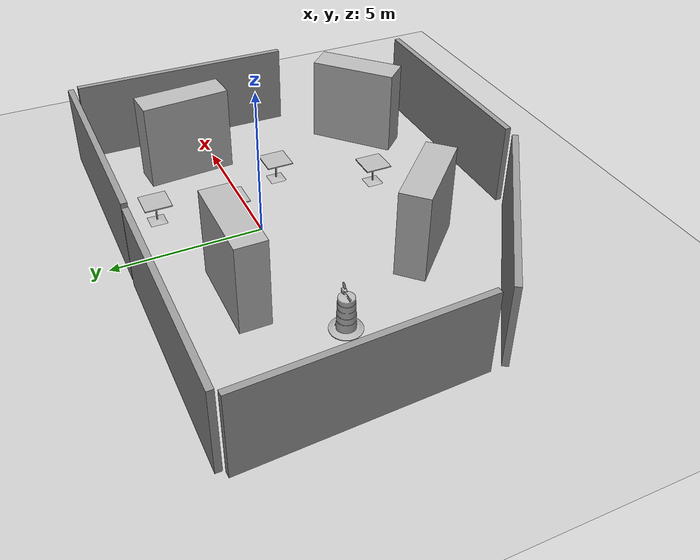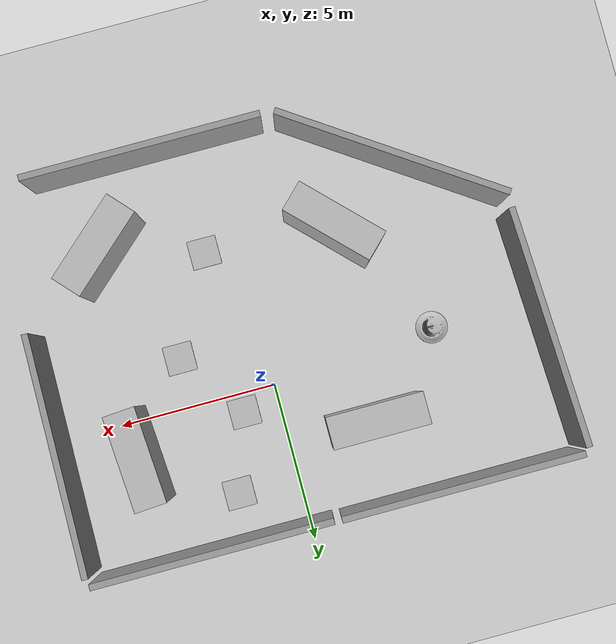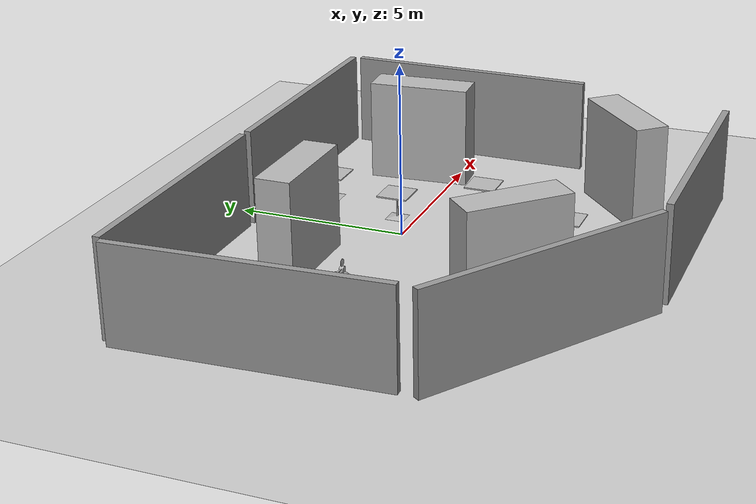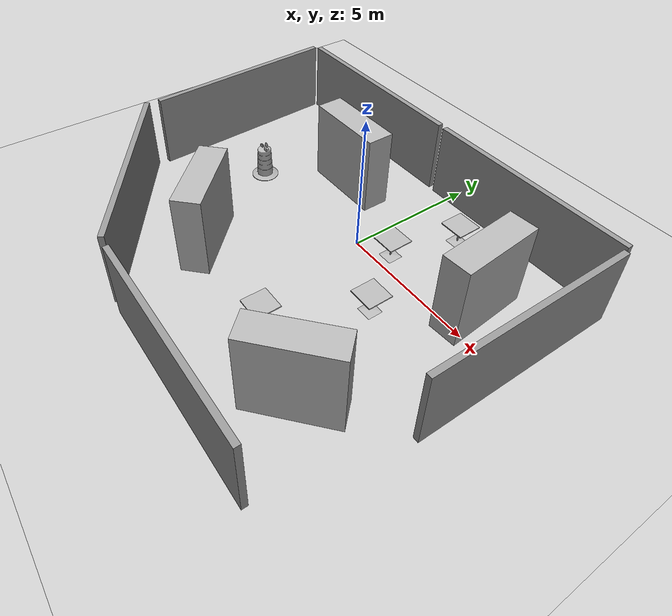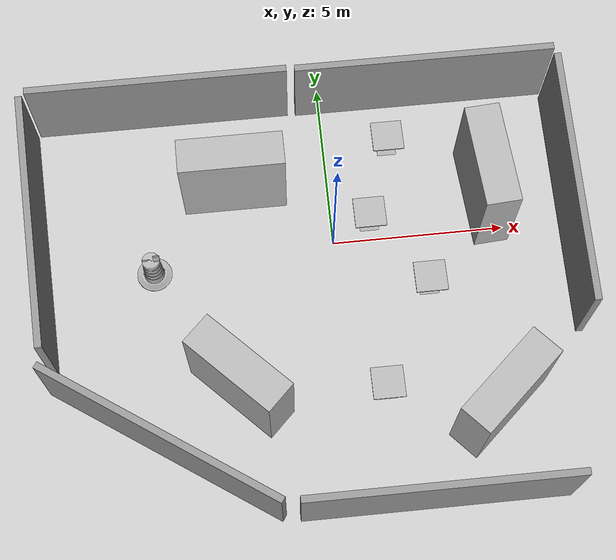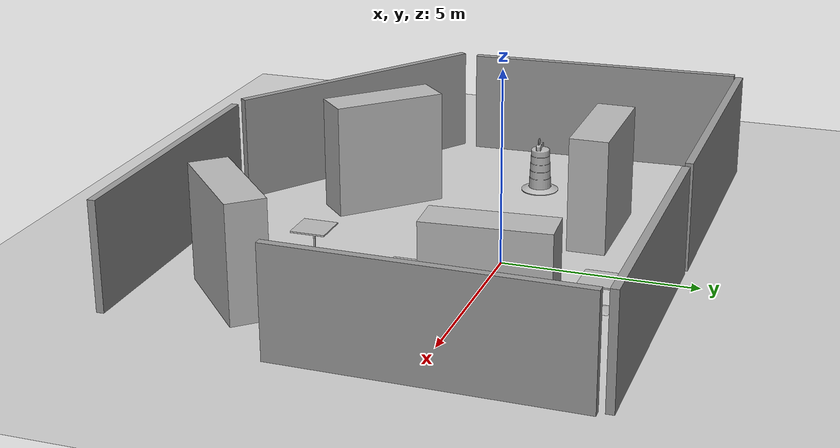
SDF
<sdf version="1.7">
 <world name="default">
  <model name="ground_plane">
   <static>1</static>
   <link name="link">
    <collision name="collision">
     <geometry><plane><normal>0 0 1</normal><size>100 100</size></plane></geometry>
     <surface><friction><ode><mu>100</mu><mu2>50</mu2></ode></friction></surface>
    </collision>
    <visual name="visual">
     <cast_shadows>0</cast_shadows>
     <geometry><plane><normal>0 0 1</normal><size>100 100</size></plane></geometry>
     <material>
      <script><uri>file://media/materials/scripts/gazebo.material</uri><name>Gazebo/Grey</name></script>
     </material>
    </visual>
   </link>
  </model>
  <light name="sun" type="directional">
   <pose>0 0 10 0 -0 0</pose>
   <diffuse>0.8 0.8 0.8 1</diffuse>
   <specular>0.2 0.2 0.2 1</specular>
   <attenuation>
    <range>1000</range>
    <constant>0.9</constant>
    <linear>0.01</linear>
    <quadratic>0.001</quadratic>
   </attenuation>
   <direction>-0.5 0.1 -0.9</direction>
   <spot><inner_angle>0</inner_angle><outer_angle>0</outer_angle><falloff>0</falloff></spot>
  </light>
  <scene><shadows>0</shadows><ambient>0.4 0.4 0.4 1</ambient><background>0.7 0.7 0.7 1</background></scene>
  <physics type="ode">
   <real_time_update_rate>1000</real_time_update_rate>
   <max_step_size>0.001</max_step_size>
   <real_time_factor>1</real_time_factor>
   <ode>
    <solver>
     <type>quick</type>
     <iters>150</iters>
     <precon_iters>0</precon_iters>
     <sor>1.4</sor>
     <use_dynamic_moi_rescaling>1</use_dynamic_moi_rescaling>
    </solver>
    <constraints>
     <cfm>1e-05</cfm>
     <erp>0.2</erp>
     <contact_max_correcting_vel>2000</contact_max_correcting_vel>
     <contact_surface_layer>0.01</contact_surface_layer>
    </constraints>
   </ode>
  </physics>
  <gravity>0 0 -9.8</gravity>
  <magnetic_field>6e-06 2.3e-05 -4.2e-05</magnetic_field>
  <atmosphere type="adiabatic"/>
  <audio><device>default</device></audio>
  <spherical_coordinates>
   <surface_model>EARTH_WGS84</surface_model>
   <latitude_deg>0</latitude_deg>
   <longitude_deg>0</longitude_deg>
   <elevation>0</elevation>
   <heading_deg>0</heading_deg>
  </spherical_coordinates>
  <model name="cafe_table">
   <static>1</static>
   <link name="link">
    <collision name="surface">
     <pose>0 0 0.755 0 -0 0</pose>
     <geometry><box><size>0.913 0.913 0.04</size></box></geometry>
    </collision>
    <collision name="column">
     <pose>0 0 0.37 0 -0 0</pose>
     <geometry><box><size>0.042 0.042 0.74</size></box></geometry>
    </collision>
    <collision name="base">
     <pose>0 0 0.02 0 -0 0</pose>
     <geometry><box><size>0.56 0.56 0.04</size></box></geometry>
    </collision>
    <visual name="visual">
     <geometry><mesh><uri>model://cafe_table/meshes/cafe_table.dae</uri></mesh></geometry>
    </visual>
   </link>
   <pose>1.89972 2.95823 0 0 -0 0</pose>
  </model>
  <model name="cafe_table_0">
   <static>1</static>
   <link name="link">
    <collision name="surface">
     <pose>0 0 0.755 0 -0 0</pose>
     <geometry><box><size>0.913 0.913 0.04</size></box></geometry>
    </collision>
    <collision name="column">
     <pose>0 0 0.37 0 -0 0</pose>
     <geometry><box><size>0.042 0.042 0.74</size></box></geometry>
    </collision>
    <collision name="base">
     <pose>0 0 0.02 0 -0 0</pose>
     <geometry><box><size>0.56 0.56 0.04</size></box></geometry>
    </collision>
    <visual name="visual">
     <geometry><mesh><uri>model://cafe_table/meshes/cafe_table.dae</uri></mesh></geometry>
    </visual>
   </link>
   <pose>1.10515 0.575565 0 0 -0 0</pose>
  </model>
  <model name="cafe_table_1">
   <static>1</static>
   <link name="link">
    <collision name="surface">
     <pose>0 0 0.755 0 -0 0</pose>
     <geometry><box><size>0.913 0.913 0.04</size></box></geometry>
    </collision>
    <collision name="column">
     <pose>0 0 0.37 0 -0 0</pose>
     <geometry><box><size>0.042 0.042 0.74</size></box></geometry>
    </collision>
    <collision name="base">
     <pose>0 0 0.02 0 -0 0</pose>
     <geometry><box><size>0.56 0.56 0.04</size></box></geometry>
    </collision>
    <visual name="visual">
     <geometry><mesh><uri>model://cafe_table/meshes/cafe_table.dae</uri></mesh></geometry>
    </visual>
   </link>
   <pose>2.61956 -1.5603 0 0 -0 0</pose>
  </model>
  <model name="cafe_table_2">
   <static>1</static>
   <link name="link">
    <collision name="surface">
     <pose>0 0 0.755 0 -0 0</pose>
     <geometry><box><size>0.913 0.913 0.04</size></box></geometry>
    </collision>
    <collision name="column">
     <pose>0 0 0.37 0 -0 0</pose>
     <geometry><box><size>0.042 0.042 0.74</size></box></geometry>
    </collision>
    <collision name="base">
     <pose>0 0 0.02 0 -0 0</pose>
     <geometry><box><size>0.56 0.56 0.04</size></box></geometry>
    </collision>
    <visual name="visual">
     <geometry><mesh><uri>model://cafe_table/meshes/cafe_table.dae</uri></mesh></geometry>
    </visual>
   </link>
   <pose>1.03367 -4.56579 0 0 -0 0</pose>
  </model>
  <model name="Construction Barrel">
   <link name="link">
    <inertial>
     <pose>0 0 0.4 0 -0 0</pose>
     <mass>500</mass>
     <inertia><ixx>51.2096</ixx><iyy>51.2096</iyy><izz>25</izz><ixy>0</ixy><ixz>0</ixz><iyz>0</iyz></inertia>
    </inertial>
    <collision name="collision">
     <geometry><mesh><uri>model://construction_barrel/meshes/construction_barrel.dae</uri></mesh></geometry>
    </collision>
    <visual name="visual">
     <geometry><mesh><uri>model://construction_barrel/meshes/construction_barrel.dae</uri></mesh></geometry>
    </visual>
   </link>
   <pose>-5.29714 -0.472907 -0 0 -0 0</pose>
  </model>
  <model name="grey_wall">
   <static>1</static>
   <link name="link">
    <pose>0 0 1.4 0 -0 0</pose>
    <collision name="collision"><geometry><box><size>7.5 0.2 2.8</size></box></geometry></collision>
    <visual name="visual">
     <cast_shadows>0</cast_shadows>
     <geometry><box><size>7.5 0.2 2.8</size></box></geometry>
     <material>
      <script>
       <uri>model://grey_wall/materials/scripts</uri>
       <uri>model://grey_wall/materials/textures</uri>
       <name>vrc/grey_wall</name>
      </script>
     </material>
    </visual>
   </link>
   <pose>3.02802 4.36912 0 0 -0 0</pose>
  </model>
  <model name="grey_wall_0">
   <static>1</static>
   <link name="link">
    <pose>0 0 1.4 0 -0 0</pose>
    <collision name="collision"><geometry><box><size>7.5 0.2 2.8</size></box></geometry></collision>
    <visual name="visual">
     <cast_shadows>0</cast_shadows>
     <geometry><box><size>7.5 0.2 2.8</size></box></geometry>
     <material>
      <script>
       <uri>model://grey_wall/materials/scripts</uri>
       <uri>model://grey_wall/materials/textures</uri>
       <name>vrc/grey_wall</name>
      </script>
     </material>
    </visual>
   </link>
   <pose>-4.70468 4.39666 0 0 -0 0</pose>
  </model>
  <model name="grey_wall_1">
   <static>1</static>
   <link name="link">
    <pose>0 0 1.4 0 -0 0</pose>
    <collision name="collision"><geometry><box><size>7.5 0.2 2.8</size></box></geometry></collision>
    <visual name="visual">
     <cast_shadows>0</cast_shadows>
     <geometry><box><size>7.5 0.2 2.8</size></box></geometry>
     <material>
      <script>
       <uri>model://grey_wall/materials/scripts</uri>
       <uri>model://grey_wall/materials/textures</uri>
       <name>vrc/grey_wall</name>
      </script>
     </material>
    </visual>
   </link>
   <pose>-8.44719 0.48813 0 0 -0 1.61355</pose>
  </model>
  <model name="grey_wall_2">
   <static>1</static>
   <link name="link">
    <pose>0 0 1.4 0 -0 0</pose>
    <collision name="collision"><geometry><box><size>7.5 0.2 2.8</size></box></geometry></collision>
    <visual name="visual">
     <cast_shadows>0</cast_shadows>
     <geometry><box><size>7.5 0.2 2.8</size></box></geometry>
     <material>
      <script>
       <uri>model://grey_wall/materials/scripts</uri>
       <uri>model://grey_wall/materials/textures</uri>
       <name>vrc/grey_wall</name>
      </script>
     </material>
    </visual>
   </link>
   <pose>-5.28433 -5.82394 0 0 0 -0.596752</pose>
  </model>
  <model name="grey_wall_3">
   <static>1</static>
   <link name="link">
    <pose>0 0 1.4 0 -0 0</pose>
    <collision name="collision"><geometry><box><size>7.5 0.2 2.8</size></box></geometry></collision>
    <visual name="visual">
     <cast_shadows>0</cast_shadows>
     <geometry><box><size>7.5 0.2 2.8</size></box></geometry>
     <material>
      <script>
       <uri>model://grey_wall/materials/scripts</uri>
       <uri>model://grey_wall/materials/textures</uri>
       <name>vrc/grey_wall</name>
      </script>
     </material>
    </visual>
   </link>
   <pose>2.00128 -7.95751 0 0 -0 0</pose>
  </model>
  <model name="grey_wall_6">
   <static>1</static>
   <link name="link">
    <pose>0 0 1.4 0 -0 0</pose>
    <collision name="collision"><geometry><box><size>7.5 0.2 2.8</size></box></geometry></collision>
    <visual name="visual">
     <cast_shadows>0</cast_shadows>
     <geometry><box><size>7.5 0.2 2.8</size></box></geometry>
     <material>
      <script>
       <uri>model://grey_wall/materials/scripts</uri>
       <uri>model://grey_wall/materials/textures</uri>
       <name>vrc/grey_wall</name>
      </script>
     </material>
    </visual>
   </link>
   <pose>6.7931 0.366457 0 0 -0 1.55775</pose>
  </model>
  <model name="brick_box_3x1x3">
   <static>1</static>
   <link name="chassis">
    <pose>0 0 1.5 0 -0 0</pose>
    <collision name="collision"><geometry><box><size>3 1 3</size></box></geometry></collision>
    <visual name="visual">
     <geometry><mesh><uri>model://brick_box_3x1x3/meshes/simple_box.dae</uri><scale>3 1 3</scale></mesh></geometry>
     <material>
      <script>
       <uri>model://brick_box_3x1x3/materials/scripts</uri>
       <uri>model://brick_box_3x1x3/materials/textures</uri>
       <name>BrickBox/Diffuse</name>
      </script>
     </material>
    </visual>
   </link>
   <pose>-2.75954 1.84 0 0 -0 0</pose>
  </model>
  <model name="brick_box_3x1x3_0">
   <static>1</static>
   <link name="chassis">
    <pose>0 0 1.5 0 -0 0</pose>
    <collision name="collision"><geometry><box><size>3 1 3</size></box></geometry></collision>
    <visual name="visual">
     <geometry><mesh><uri>model://brick_box_3x1x3/meshes/simple_box.dae</uri><scale>3 1 3</scale></mesh></geometry>
     <material>
      <script>
       <uri>model://brick_box_3x1x3/materials/scripts</uri>
       <uri>model://brick_box_3x1x3/materials/textures</uri>
       <name>BrickBox/Diffuse</name>
      </script>
     </material>
    </visual>
   </link>
   <pose>-3.04437 -4.23869 0 0 0 -0.789558</pose>
  </model>
  <model name="brick_box_3x1x3_1">
   <static>1</static>
   <link name="chassis">
    <pose>0 0 1.5 0 -0 0</pose>
    <collision name="collision"><geometry><box><size>3 1 3</size></box></geometry></collision>
    <visual name="visual">
     <geometry><mesh><uri>model://brick_box_3x1x3/meshes/simple_box.dae</uri><scale>3 1 3</scale></mesh></geometry>
     <material>
      <script>
       <uri>model://brick_box_3x1x3/materials/scripts</uri>
       <uri>model://brick_box_3x1x3/materials/textures</uri>
       <name>BrickBox/Diffuse</name>
      </script>
     </material>
    </visual>
   </link>
   <pose>4.06713 -5.40036 0 0 -0 0.737796</pose>
  </model>
  <model name="brick_box_3x1x3_2">
   <static>1</static>
   <link name="chassis">
    <pose>0 0 1.5 0 -0 0</pose>
    <collision name="collision"><geometry><box><size>3 1 3</size></box></geometry></collision>
    <visual name="visual">
     <geometry><mesh><uri>model://brick_box_3x1x3/meshes/simple_box.dae</uri><scale>3 1 3</scale></mesh></geometry>
     <material>
      <script>
       <uri>model://brick_box_3x1x3/materials/scripts</uri>
       <uri>model://brick_box_3x1x3/materials/textures</uri>
       <name>BrickBox/Diffuse</name>
      </script>
     </material>
    </visual>
   </link>
   <pose>4.50629 1.07954 0 0 -0 1.64216</pose>
  </model>
 </world>
</sdf>
